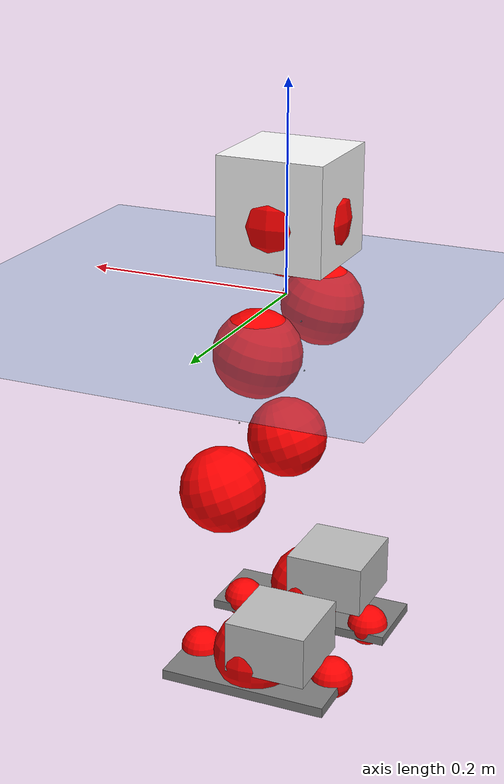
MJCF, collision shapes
<mujoco model="pi_12dof_release_v1">
  <compiler angle="radian" assetdir="assets" balanceinertia="true" inertiafromgeom="false"/>

  <option timestep="0.005" density="1.2" viscosity="2e-05"/>

  <size nkey="1"/>

  <visual>
    <quality shadowsize="8192"/>
    <map shadowclip="0.5"/>
  </visual>

  <default>
    <default class="/">
      <joint armature="0.01" damping="0.01" frictionloss="0.01"/>
      <geom contype="0" conaffinity="0" group="1" solref="-1000 -80"/>
      <site size="0.01 0.005 0.005" group="5"/>
      <general forcelimited="true" biastype="affine" gainprm="20" biasprm="0 -20 -0.5"/>
      <default class="foot">
        <geom size="0.0845 0.036 0.005" type="box" condim="6" group="4" priority="1" friction="0.9 0.2 0.2" solimp="0.015 1 0.005"/>
      </default>
      <default class="reward_collision_sphere">
        <geom group="5" rgba="1 0 0 1"/>
      </default>
    </default>
  </default>

  <asset>
    <texture type="skybox" colorspace="auto" name="//unnamed_texture_0" builtin="gradient" rgb1="0.95 0.95 0.95" rgb2="0.95 0.95 0.95" width="100" height="600"/>
    <texture type="2d" colorspace="auto" name="texplane" builtin="checker" rgb1="0.345 0.575 0.748" rgb2="0.345 0.575 0.748" markrgb="1 1 1" width="512" height="512"/>
    <material name="MatPlane" class="/" texture="texplane" texuniform="true" texrepeat="2 2" specular="0.9"/>
    <mesh name="baselink_1" class="/" file="baselink_1.STL"/>
    <mesh name="r_hip_pitch_link" class="/" file="r_hip_pitch_link.STL"/>
    <mesh name="r_hip_roll_link" class="/" file="r_hip_roll_link.STL"/>
    <mesh name="r_thigh_link" class="/" file="r_thigh_link.STL"/>
    <mesh name="r_calf_link" class="/" file="r_calf_link.STL"/>
    <mesh name="r_ankle_pitch_link" class="/" file="r_ankle_pitch_link.STL"/>
    <mesh name="r_ankle_roll_link" class="/" file="r_ankle_roll_link.STL"/>
    <mesh name="l_hip_pitch_link" class="/" file="l_hip_pitch_link.STL"/>
    <mesh name="l_hip_roll_link" class="/" file="l_hip_roll_link.STL"/>
    <mesh name="l_thigh_link" class="/" file="l_thigh_link.STL"/>
    <mesh name="l_calf_link" class="/" file="l_calf_link.STL"/>
    <mesh name="l_ankle_pitch_link" class="/" file="l_ankle_pitch_link.STL"/>
    <mesh name="l_ankle_roll_link" class="/" file="l_ankle_roll_link.STL"/>
  </asset>

  <worldbody>
    <geom name="floor" class="/" size="100 100 0.125" type="plane" group="0" material="MatPlane"/>
    <light name="toplight_shadow" class="/" pos="0 0 5" dir="0.0990148 0.0990148 -0.990148" type="directional" ambient="0.04 0.04 0.04" diffuse="0.55 0.55 0.55" specular="0.12 0.12 0.12"/>
    <light name="toplight_fill" class="/" pos="0 0 5" dir="0.0990148 0.0990148 -0.990148" type="directional" castshadow="false" ambient="0.04 0.04 0.04" diffuse="0.3 0.3 0.3" specular="0.08 0.08 0.08"/>
    <body name="trunk" pos="-0.00194769 -0.0028256 -0.0013664" quat="0.999999 -0.000795994 -0.00103237 -0.000428858">
      <inertial pos="0.000764003 -0.000773108 0.0437211" quat="0.694419 0.0118918 0.00348625 0.719464" mass="2.2861" diaginertia="0.0107351 0.00690365 0.00639265"/>
      <joint name="//unnamed_joint_0" type="free"/>
      <geom name="//unnamed_geom_1" class="/" type="mesh" density="0" rgba="1 1 1 1" mesh="baselink_1"/>
      <geom name="//unnamed_geom_2" class="/" size="0.0509315 0.0509315 0.0509315" pos="0 0 0.0867262" type="box" rgba="1 1 1 1"/>
      <geom name="//unnamed_geom_3" class="reward_collision_sphere" size="0.0560247" pos="0 0 0.0758854"/>
      <site name="imu" class="/" pos="0.000150501 0.00558297 -0.000950975" size="0.0101863"/>
      <camera name="track" class="/" pos="0 -1.90254 0" quat="0.707107 0.707107 0 0" mode="trackcom"/>
      <camera name="ego_camera" class="/" pos="0.0765407 0 0.195134" quat="-0.5 -0.5 0.5 0.5"/>
      <body name="r_hip_pitch_link" pos="-0.00220922 -0.0242087 -0.0335883" quat="0.992154 0.000942199 -0.125015 9.72728e-05">
        <inertial pos="-0.000505597 -0.0558862 -0.00204411" quat="-0.0177559 0.707673 -0.0274545 0.705783" mass="0.408676" diaginertia="0.00012537 7.66329e-05 0.000132161"/>
        <joint name="r_hip_pitch_joint" class="/" pos="0 0 0" axis="-0.0108373 -0.999937 0.00304166" range="-1.74539 1.26271" armature="0.0102303" damping="0.00496318" frictionloss="0.0116307"/>
        <geom name="//unnamed_geom_4" class="/" type="mesh" density="0" rgba="0.75294 0.75294 0.75294 1" mesh="r_hip_pitch_link"/>
        <geom name="//unnamed_geom_5" class="/" size="0.000509315 0.000509315 0.000509315" type="box" rgba="0.75294 0.75294 0.75294 1"/>
        <body name="r_hip_roll_link" pos="0.000305148 -0.0531899 0.00134398" quat="1 3.04237e-06 -9.2084e-06 -2.48688e-05">
          <inertial pos="0.000123724 -0.00111026 -0.0636714" quat="0.708257 -0.0809925 -0.0827182 0.696398" mass="0.413284" diaginertia="0.000376753 0.000218298 0.000190296"/>
          <joint name="r_hip_roll_joint" class="/" pos="0 0 0" axis="-1 0.000409265 -0.000301142" stiffness="0.0113128" range="-0.174348 0.540314" armature="0.00888798" damping="0" frictionloss="0.0101243"/>
          <geom name="//unnamed_geom_6" class="/" type="mesh" density="0" rgba="0.75294 0.75294 0.75294 1" mesh="r_hip_roll_link"/>
          <geom name="//unnamed_geom_7" class="/" size="0.000509315 0.000509315 0.000509315" type="box" rgba="0.75294 0.75294 0.75294 1"/>
          <geom name="//unnamed_geom_8" class="reward_collision_sphere" size="0.0407452"/>
          <body name="r_thigh_link" pos="-0.00137181 0.000663672 -0.0744501" quat="0.999999 -0.0010514 0.000896227 -5.06262e-05">
            <inertial pos="0.00276884 0.00276271 -0.0542395" quat="0.740865 0.67156 -0.00272613 -0.010897" mass="0.119542" diaginertia="0.000137026 7.57622e-05 8.36989e-05"/>
            <joint name="r_thigh_joint" class="/" pos="0 0 0" axis="-0.010664 0.00652442 -0.999922" range="-0.296975 0.650703" armature="0.00883776" damping="0.0135511" frictionloss="0.0105105"/>
            <geom name="//unnamed_geom_9" class="/" type="mesh" density="0" rgba="0.75294 0.75294 0.75294 1" mesh="r_thigh_link"/>
            <geom name="//unnamed_geom_10" class="/" size="0.000509315 0.000509315 0.000509315" type="box" rgba="0.75294 0.75294 0.75294 1"/>
            <body name="r_calf_link" pos="-0.00112134 -0.000218363 -0.0769619" quat="0.947601 0.000630263 0.319456 0.000733286">
              <inertial pos="0.00242103 -0.000415753 -0.0756363" quat="0.999983 -0.00133846 -0.000573431 0.00561744" mass="0.900466" diaginertia="0.00408313 0.00283689 0.000261379"/>
              <joint name="r_calf_joint" class="/" pos="0 0 0" axis="-8.63682e-05 -0.999997 -0.00256388" stiffness="0.00877791" range="-1.64004 0.596748" armature="0.0109826" damping="0.00386514" frictionloss="0.0109472"/>
              <geom name="//unnamed_geom_11" class="/" type="mesh" density="0" rgba="0.75294 0.75294 0.75294 1" mesh="r_calf_link"/>
              <geom name="//unnamed_geom_12" class="/" size="0.000509315 0.000509315 0.000509315" type="box" rgba="0.75294 0.75294 0.75294 1"/>
              <geom name="//unnamed_geom_13" class="reward_collision_sphere" size="0.0407452"/>
              <body name="r_ankle_pitch_link" pos="-0.0005667 0.000804065 -0.149316" quat="0.980005 0.000362373 -0.198971 0.000956725">
                <inertial pos="0.0020205 0.0019814 -0.000672036" quat="-0.000193352 0.709971 -0.000299483 0.70423" mass="0.180041" diaginertia="0.000338113 0.000166682 0.000170797"/>
                <joint name="r_ankle_pitch_joint" class="/" pos="0 0 0" axis="0.00821968 -0.999965 0.00177875" range="-1.35235 0.556641" armature="0.0107351" damping="0.0124735" frictionloss="0.00875757"/>
                <geom name="//unnamed_geom_14" class="/" type="mesh" density="0" rgba="0.75294 0.75294 0.75294 1" mesh="r_ankle_pitch_link"/>
                <geom name="//unnamed_geom_15" class="/" size="0.0397266 0.0407452 0.0254658" type="box" rgba="0.75294 0.75294 0.75294 1"/>
                <body name="r_ankle_roll_link" pos="0.080338 0.00264081 -0.000625735" quat="1 5.27366e-05 3.97156e-05 -6.69869e-07">
                  <inertial pos="-0.0216767 0.000227052 -0.0160512" quat="0.562704 0.429208 0.436271 0.555709" mass="0.567649" diaginertia="0.00133759 0.000801143 0.000436377"/>
                  <joint name="r_ankle_roll_joint" class="/" pos="0 0 0" axis="-0.99999 0.00390677 -0.00200974" range="-0.130496 0.0973816" armature="0.0097072" damping="0" frictionloss="0.0103839"/>
                  <geom name="//unnamed_geom_16" class="/" type="mesh" density="0" rgba="0.75294 0.75294 0.75294 1" mesh="r_ankle_roll_link"/>
                  <geom name="//unnamed_geom_17" class="/" type="mesh" rgba="0.75294 0.75294 0.75294 1" mesh="r_ankle_roll_link"/>
                  <geom name="right_foot" class="foot" size="0.0935379 0.0378418 0.00460879" pos="-0.0520476 0 -0.0476994"/>
                  <geom name="//unnamed_geom_19" class="reward_collision_sphere" size="0.0407452" pos="-0.0510271 0 -0.0216815"/>
                  <geom name="//unnamed_geom_20" class="reward_collision_sphere" size="0.0203726" pos="0.0153081 0.0190254 -0.0433631"/>
                  <geom name="//unnamed_geom_21" class="reward_collision_sphere" size="0.0203726" pos="-0.122465 0.0190254 -0.0433631"/>
                  <site name="right_foot" class="foot" pos="-0.0520476 0 -0.0476994" size="0.0101863"/>
                </body>
              </body>
            </body>
          </body>
        </body>
      </body>
      <body name="l_hip_pitch_link" pos="2.14981e-05 0.0224799 -0.0331286" quat="0.992224 0.000260645 -0.124466 0.000168589">
        <inertial pos="0.0027939 0.0513259 -0.000483892" quat="-0.0383015 0.705658 0.0300141 0.70688" mass="0.407705" diaginertia="0.000141141 8.42743e-05 0.000149858"/>
        <joint name="l_hip_pitch_joint" class="/" pos="0 0 0" axis="-0.000728745 1 0.000542256" range="-1.19603 1.74979" armature="0.0116268" damping="0" frictionloss="0.0110133"/>
        <geom name="//unnamed_geom_22" class="/" type="mesh" density="0" rgba="0.75294 0.75294 0.75294 1" mesh="l_hip_pitch_link"/>
        <geom name="//unnamed_geom_23" class="/" size="0.000509315 0.000509315 0.000509315" type="box" rgba="0.75294 0.75294 0.75294 1"/>
        <body name="l_hip_roll_link" pos="-0.00236435 0.0552695 0.00275238" quat="0.999999 0.000254343 0.000201695 0.00104877">
          <inertial pos="-0.000912532 0.000818754 -0.0657947" quat="0.69994 -0.0846505 -0.0859394 0.703941" mass="0.397666" diaginertia="0.000370997 0.000209055 0.000194728"/>
          <joint name="l_hip_roll_joint" class="/" pos="0 0 0" axis="-0.999975 0.00365528 -0.00597057" stiffness="0.00457217" range="-0.511849 0.0877989" armature="0.0116607" damping="0.00313585" frictionloss="0.0112776"/>
          <geom name="//unnamed_geom_24" class="/" type="mesh" density="0" rgba="0.75294 0.75294 0.75294 1" mesh="l_hip_roll_link"/>
          <geom name="//unnamed_geom_25" class="/" size="0.000509315 0.000509315 0.000509315" type="box" rgba="0.75294 0.75294 0.75294 1"/>
          <geom name="//unnamed_geom_26" class="reward_collision_sphere" size="0.0407452"/>
          <body name="l_thigh_link" pos="0.000219472 -0.000188042 -0.0728803" quat="1 -0.000233755 0.000213765 0.000213452">
            <inertial pos="5.0685e-05 -0.00170624 -0.0490091" quat="0.676121 0.73679 -0.00088341 0.000198484" mass="0.119371" diaginertia="0.000138648 7.40471e-05 8.7944e-05"/>
            <joint name="l_thigh_joint" class="/" pos="0 0 0" axis="-0.00223044 0.00251359 -0.999994" stiffness="0.0020939" range="-0.606824 0.320265" armature="0.00882416" damping="0.00550302" frictionloss="0.0107071"/>
            <geom name="//unnamed_geom_27" class="/" type="mesh" density="0" rgba="0.75294 0.75294 0.75294 1" mesh="l_thigh_link"/>
            <geom name="//unnamed_geom_28" class="/" size="0.000509315 0.000509315 0.000509315" type="box" rgba="0.75294 0.75294 0.75294 1"/>
            <body name="l_calf_link" pos="-0.000207669 -0.00241996 -0.0736758" quat="0.947695 -0.000601743 0.319173 0.00133867">
              <inertial pos="0.000361289 0.00593275 -0.0756453" quat="0.999903 -0.0051602 -0.00202286 0.0127913" mass="0.858847" diaginertia="0.00400692 0.00280783 0.000255673"/>
              <joint name="l_calf_joint" class="/" pos="0 0 0" axis="0.00393955 0.999985 -0.00373305" range="-0.63437 1.63262" armature="0.00936159" damping="0.0132864" frictionloss="0.0111337"/>
              <geom name="//unnamed_geom_29" class="/" type="mesh" density="0" rgba="0.75294 0.75294 0.75294 1" mesh="l_calf_link"/>
              <geom name="//unnamed_geom_30" class="/" size="0.000509315 0.000509315 0.000509315" type="box" rgba="0.75294 0.75294 0.75294 1"/>
              <geom name="//unnamed_geom_31" class="reward_collision_sphere" size="0.0407452"/>
              <body name="l_ankle_pitch_link" pos="0.000377784 -0.00102345 -0.154734" quat="0.980182 0.000684135 -0.198096 -0.000312362">
                <inertial pos="0.00534808 -0.00307577 -5.12552e-05" quat="-0.0010001 0.706842 0.000853358 0.70737" mass="0.17845" diaginertia="0.000328864 0.000169169 0.000171513"/>
                <joint name="l_ankle_pitch_joint" class="/" pos="0 0 0" axis="0.00228917 0.999993 -0.00285869" stiffness="0.00280403" range="-0.492584 1.30075" armature="0.010178" damping="0.0132607" frictionloss="0.0110318"/>
                <geom name="//unnamed_geom_32" class="/" type="mesh" density="0" rgba="0.75294 0.75294 0.75294 1" mesh="l_ankle_pitch_link"/>
                <geom name="//unnamed_geom_33" class="/" size="0.0397266 0.0407452 0.0254658" type="box" rgba="0.75294 0.75294 0.75294 1"/>
                <body name="l_ankle_roll_link" pos="0.0760092 0.00281945 0.000568789" quat="1 0.000303745 1.70518e-05 0.000135686">
                  <inertial pos="-0.0231475 -0.000104133 -0.0133025" quat="0.558813 0.436748 0.431976 0.557114" mass="0.546232" diaginertia="0.00126193 0.000757595 0.000429104"/>
                  <joint name="l_ankle_roll_joint" class="/" pos="0 0 0" axis="-0.999898 -0.0126398 0.00664005" range="-0.159279 0.156915" armature="0.00983137" damping="0.0215205" frictionloss="0.0101634"/>
                  <geom name="//unnamed_geom_34" class="/" type="mesh" density="0" rgba="0.75294 0.75294 0.75294 1" mesh="l_ankle_roll_link"/>
                  <geom name="//unnamed_geom_35" class="/" type="mesh" rgba="0.75294 0.75294 0.75294 1" mesh="l_ankle_roll_link"/>
                  <geom name="left_foot" class="foot" size="0.0828079 0.0372268 0.00490427" pos="-0.0520476 0 -0.0476994"/>
                  <geom name="//unnamed_geom_37" class="reward_collision_sphere" size="0.0407452" pos="-0.0510271 0 -0.0216815"/>
                  <geom name="//unnamed_geom_38" class="reward_collision_sphere" size="0.0203726" pos="0.0153081 -0.0190254 -0.0433631"/>
                  <geom name="//unnamed_geom_39" class="reward_collision_sphere" size="0.0203726" pos="-0.122465 -0.0190254 -0.0433631"/>
                  <site name="left_foot" class="foot" pos="-0.0520476 0 -0.0476994" size="0.0101863"/>
                </body>
              </body>
            </body>
          </body>
        </body>
      </body>
    </body>
  </worldbody>

  <contact>
    <pair class="/" geom1="floor" geom2="right_foot" name="//unnamed_contact_1"/>
    <pair class="/" geom1="floor" geom2="left_foot" name="//unnamed_contact_0"/>
  </contact>

  <actuator>
    <general name="r_hip_pitch_joint" class="/" joint="r_hip_pitch_joint" forcerange="-21.7894 21.7894" gainprm="19.9315" biasprm="0 -19.9315 -0.478537"/>
    <general name="r_hip_roll_joint" class="/" joint="r_hip_roll_joint" forcerange="-21.6592 21.6592" gainprm="19.9315" biasprm="0 -19.9315 -0.478537"/>
    <general name="r_thigh_joint" class="/" joint="r_thigh_joint" forcerange="-21.3442 21.3442" gainprm="19.9315" biasprm="0 -19.9315 -0.478537"/>
    <general name="r_calf_joint" class="/" joint="r_calf_joint" forcerange="-21.9779 21.9779" gainprm="19.9315" biasprm="0 -19.9315 -0.478537"/>
    <general name="r_ankle_pitch_joint" class="/" joint="r_ankle_pitch_joint" forcerange="-20.8857 20.8857" gainprm="19.9315" biasprm="0 -19.9315 -0.478537"/>
    <general name="r_ankle_roll_joint" class="/" joint="r_ankle_roll_joint" forcerange="-21.9222 21.9222" gainprm="19.9315" biasprm="0 -19.9315 -0.478537"/>
    <general name="l_hip_pitch_joint" class="/" joint="l_hip_pitch_joint" forcerange="-21.7296 21.7296" gainprm="19.9315" biasprm="0 -19.9315 -0.478537"/>
    <general name="l_hip_roll_joint" class="/" joint="l_hip_roll_joint" forcerange="-19.6065 19.6065" gainprm="19.9315" biasprm="0 -19.9315 -0.478537"/>
    <general name="l_thigh_joint" class="/" joint="l_thigh_joint" forcerange="-21.4316 21.4316" gainprm="19.9315" biasprm="0 -19.9315 -0.478537"/>
    <general name="l_calf_joint" class="/" joint="l_calf_joint" forcerange="-22.5469 22.5469" gainprm="19.9315" biasprm="0 -19.9315 -0.478537"/>
    <general name="l_ankle_pitch_joint" class="/" joint="l_ankle_pitch_joint" forcerange="-21.5707 21.5707" gainprm="19.9315" biasprm="0 -19.9315 -0.478537"/>
    <general name="l_ankle_roll_joint" class="/" joint="l_ankle_roll_joint" forcerange="-19.1208 19.1208" gainprm="19.9315" biasprm="0 -19.9315 -0.478537"/>
  </actuator>

  <sensor>
    <gyro site="imu" name="imu_angular_velocity"/>
    <velocimeter site="imu" name="imu_linear_velocity"/>
    <framelinvel objtype="site" objname="left_foot" name="left_foot_global_linear_velocity"/>
    <framelinvel objtype="site" objname="right_foot" name="right_foot_global_linear_velocity"/>
  </sensor>

  <keyframe>
    <key name="home" qpos="0 0 0.291 1 0 0 0 0.4 0 0 -0.8 0.4 0 -0.4 0 0 0.8 -0.4 0"/>
  </keyframe>
</mujoco>
